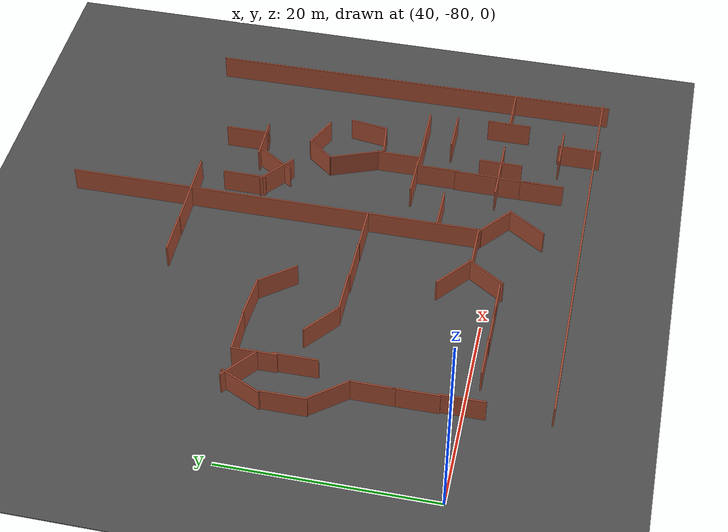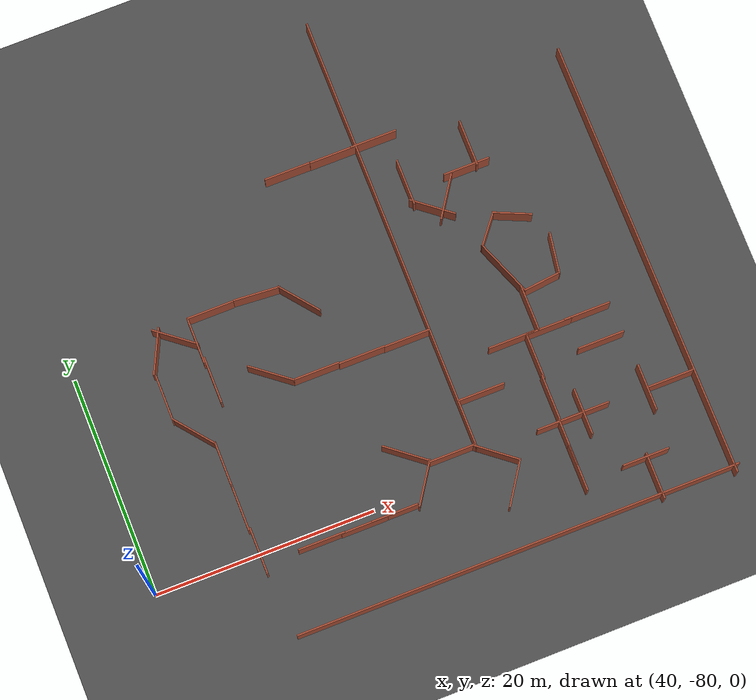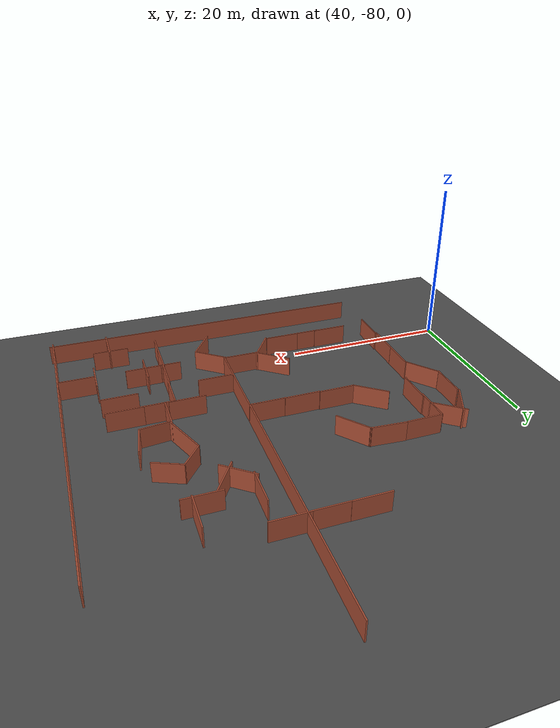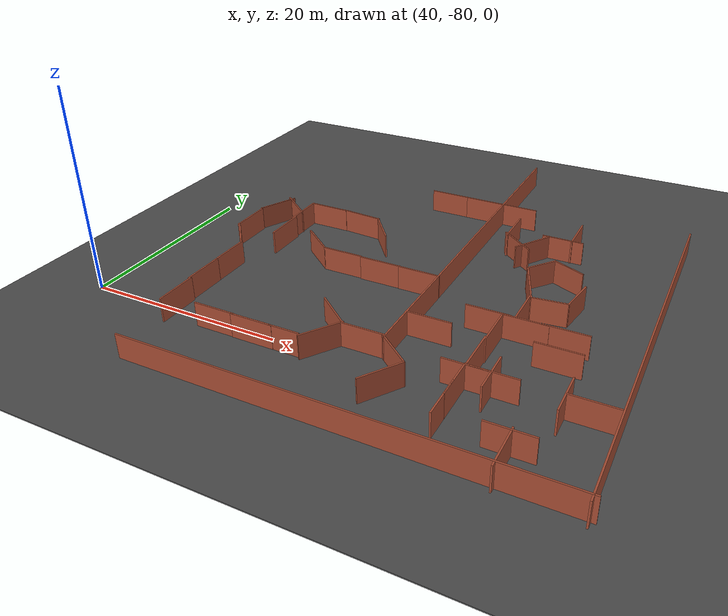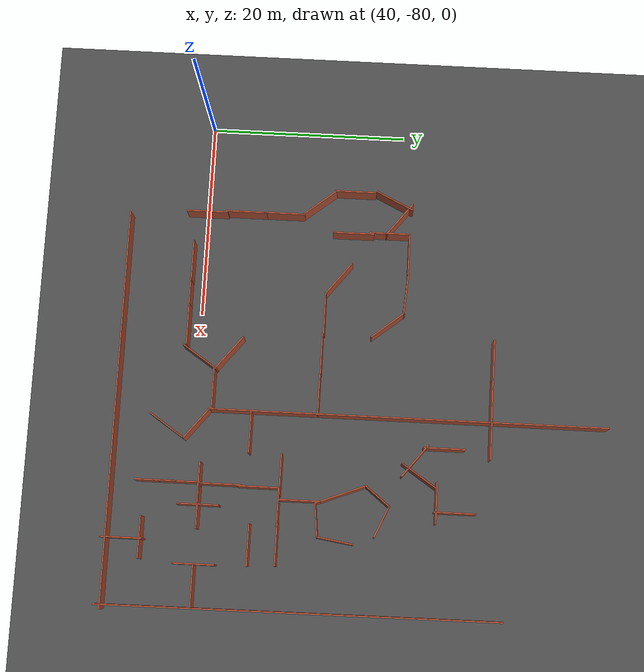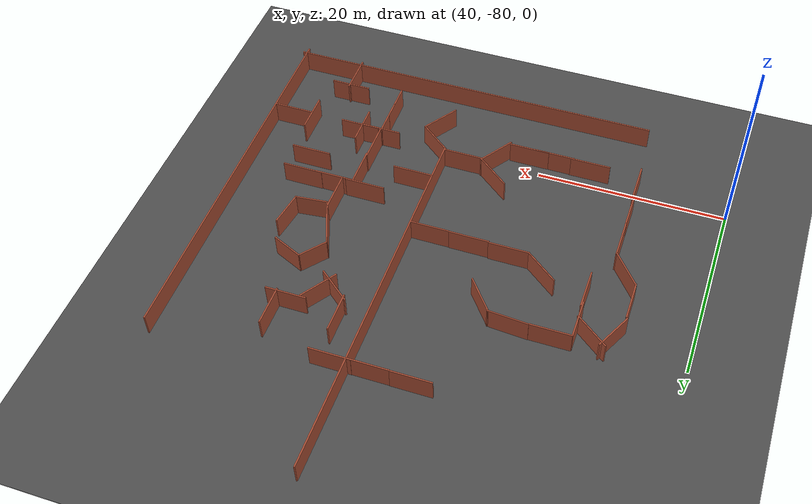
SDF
<sdf version="1.6">
 <world name="default">
  <model name="ground_plane">
   <static>1</static>
   <link name="link">
    <collision name="collision">
     <geometry><plane><normal>0 0 1</normal><size>200 200</size></plane></geometry>
     <surface><friction><ode><mu>100</mu><mu2>50</mu2></ode></friction></surface>
    </collision>
    <visual name="visual">
     <cast_shadows>0</cast_shadows>
     <geometry><plane><normal>0 0 1</normal><size>200 200</size></plane></geometry>
     <material>
      <script><uri>file://media/materials/scripts/gazebo.material</uri><name>Gazebo/Grey</name></script>
     </material>
    </visual>
   </link>
  </model>
  <model name="asphalt_plane">
   <static>1</static>
   <link name="link">
    <collision name="collision"><geometry><box><size>200 200 0.1</size></box></geometry></collision>
    <visual name="visual">
     <cast_shadows>0</cast_shadows>
     <geometry><box><size>200 200 0.1</size></box></geometry>
     <material>
      <script>
       <uri>model://asphalt_plane/materials/scripts</uri>
       <uri>model://asphalt_plane/materials/textures</uri>
       <name>vrc/asphalt</name>
      </script>
     </material>
    </visual>
   </link>
  </model>
  <model name="longwall_0_clone">
   <pose>70.0948 -58.1794 0 0 0 -1.57092</pose>
   <link name="Wall_0">
    <collision name="Wall_0_Collision">
     <geometry><box><size>40.5 0.15 2.5</size></box></geometry>
     <pose>0 0 1.25 0 -0 0</pose>
    </collision>
    <visual name="Wall_0_Visual">
     <pose>0 0 1.25 0 -0 0</pose>
     <geometry><box><size>40.5 0.15 2.5</size></box></geometry>
     <material>
      <script><uri>file://media/materials/scripts/gazebo.material</uri><name>Gazebo/Bricks</name></script>
      <ambient>1 1 1 1</ambient>
     </material>
    </visual>
    <pose>1e-06 0 0 0 -0 0</pose>
   </link>
   <static>1</static>
  </model>
  <model name="worlds_0_clone">
   <pose>57.3372 -59.0075 0 0 -0 1.49697</pose>
   <link name="Wall_0">
    <collision name="Wall_0_Collision">
     <geometry><box><size>4.25 0.15 2.5</size></box></geometry>
     <pose>0 0 1.25 0 -0 0</pose>
    </collision>
    <visual name="Wall_0_Visual">
     <pose>0 0 1.25 0 -0 0</pose>
     <geometry><box><size>4.25 0.15 2.5</size></box></geometry>
     <material>
      <script><uri>file://media/materials/scripts/gazebo.material</uri><name>Gazebo/Bricks</name></script>
      <ambient>1 1 1 1</ambient>
     </material>
    </visual>
    <pose>0 -0 0 0 -0 1.5708</pose>
   </link>
   <static>1</static>
  </model>
  <model name="worlds_2_clone">
   <pose>60.6055 -60.7291 0 0 -0 0.67691</pose>
   <link name="Wall_0">
    <collision name="Wall_0_Collision">
     <geometry><box><size>4.25 0.15 2.5</size></box></geometry>
     <pose>0 0 1.25 0 -0 0</pose>
    </collision>
    <visual name="Wall_0_Visual">
     <pose>0 0 1.25 0 -0 0</pose>
     <geometry><box><size>4.25 0.15 2.5</size></box></geometry>
     <material>
      <script><uri>file://media/materials/scripts/gazebo.material</uri><name>Gazebo/Bricks</name></script>
      <ambient>1 1 1 1</ambient>
     </material>
    </visual>
    <pose>0 -0 0 0 -0 1.5708</pose>
   </link>
   <static>1</static>
  </model>
  <model name="worlds_1_clone_0_clone">
   <pose>63.736 -49.7946 0 0 0 -1.57092</pose>
   <link name="Wall_0">
    <collision name="Wall_0_Collision">
     <geometry><box><size>4.25 0.15 2.5</size></box></geometry>
     <pose>0 0 1.25 0 -0 0</pose>
    </collision>
    <visual name="Wall_0_Visual">
     <pose>0 0 1.25 0 -0 0</pose>
     <geometry><box><size>4.25 0.15 2.5</size></box></geometry>
     <material>
      <script><uri>file://media/materials/scripts/gazebo.material</uri><name>Gazebo/Bricks</name></script>
      <ambient>1 1 1 1</ambient>
     </material>
    </visual>
    <pose>0 -0 0 0 -0 1.5708</pose>
   </link>
   <static>1</static>
  </model>
  <model name="worlds_1_clone_0_clone_clone">
   <pose>67.9203 -49.8236 0 0 0 -1.57092</pose>
   <link name="Wall_0">
    <collision name="Wall_0_Collision">
     <geometry><box><size>4.25 0.15 2.5</size></box></geometry>
     <pose>0 0 1.25 0 -0 0</pose>
    </collision>
    <visual name="Wall_0_Visual">
     <pose>0 0 1.25 0 -0 0</pose>
     <geometry><box><size>4.25 0.15 2.5</size></box></geometry>
     <material>
      <script><uri>file://media/materials/scripts/gazebo.material</uri><name>Gazebo/Bricks</name></script>
      <ambient>1 1 1 1</ambient>
     </material>
    </visual>
    <pose>0 -0 0 0 -0 1.5708</pose>
   </link>
   <static>1</static>
  </model>
  <model name="worlds_1_clone_1_clone">
   <pose>51.1412 -64.7 0 0 -0 0</pose>
   <link name="Wall_0">
    <collision name="Wall_0_Collision">
     <geometry><box><size>4.25 0.15 2.5</size></box></geometry>
     <pose>0 0 1.25 0 -0 0</pose>
    </collision>
    <visual name="Wall_0_Visual">
     <pose>0 0 1.25 0 -0 0</pose>
     <geometry><box><size>4.25 0.15 2.5</size></box></geometry>
     <material>
      <script><uri>file://media/materials/scripts/gazebo.material</uri><name>Gazebo/Bricks</name></script>
      <ambient>1 1 1 1</ambient>
     </material>
    </visual>
    <pose>0 -0 0 0 -0 1.5708</pose>
   </link>
   <static>1</static>
  </model>
  <model name="worlds_1_clone_0_clone_clone_0_clone_clone_0">
   <pose>53.1055 -58.8873 0 0 0 -1.57092</pose>
   <link name="Wall_0">
    <collision name="Wall_0_Collision">
     <geometry><box><size>4.25 0.15 2.5</size></box></geometry>
     <pose>0 0 1.25 0 -0 0</pose>
    </collision>
    <visual name="Wall_0_Visual">
     <pose>0 0 1.25 0 -0 0</pose>
     <geometry><box><size>4.25 0.15 2.5</size></box></geometry>
     <material>
      <script><uri>file://media/materials/scripts/gazebo.material</uri><name>Gazebo/Bricks</name></script>
      <ambient>1 1 1 1</ambient>
     </material>
    </visual>
    <pose>0 -0 0 0 -0 1.5708</pose>
   </link>
   <static>1</static>
  </model>
  <model name="longwall_clone_clone_3_clone_0">
   <pose>89.9316 -68.2995 0 0 0 -1.56602</pose>
   <link name="Wall_0">
    <collision name="Wall_0_Collision">
     <geometry><box><size>40.5 0.15 2.5</size></box></geometry>
     <pose>0 0 1.25 0 -0 0</pose>
    </collision>
    <visual name="Wall_0_Visual">
     <pose>0 0 1.25 0 -0 0</pose>
     <geometry><box><size>40.5 0.15 2.5</size></box></geometry>
     <material>
      <script><uri>file://media/materials/scripts/gazebo.material</uri><name>Gazebo/Bricks</name></script>
      <ambient>1 1 1 1</ambient>
     </material>
    </visual>
    <pose>1e-06 0 0 0 -0 0</pose>
   </link>
   <static>1</static>
  </model>
  <model name="worlds_1_clone_0_clone_clone_0_clone_clone_clone">
   <pose>71.7506 -49.7978 0 0 0 -1.57092</pose>
   <link name="Wall_0">
    <collision name="Wall_0_Collision">
     <geometry><box><size>4.25 0.15 2.5</size></box></geometry>
     <pose>0 0 1.25 0 -0 0</pose>
    </collision>
    <visual name="Wall_0_Visual">
     <pose>0 0 1.25 0 -0 0</pose>
     <geometry><box><size>4.25 0.15 2.5</size></box></geometry>
     <material>
      <script><uri>file://media/materials/scripts/gazebo.material</uri><name>Gazebo/Bricks</name></script>
      <ambient>1 1 1 1</ambient>
     </material>
    </visual>
    <pose>0 -0 0 0 -0 1.5708</pose>
   </link>
   <static>1</static>
  </model>
  <model name="worlds_1_clone_0_clone_clone_0_clone_clone_clone_0">
   <pose>67.9553 -78.1375 0 0 0 -1.57092</pose>
   <link name="Wall_0">
    <collision name="Wall_0_Collision">
     <geometry><box><size>4.25 0.15 2.5</size></box></geometry>
     <pose>0 0 1.25 0 -0 0</pose>
    </collision>
    <visual name="Wall_0_Visual">
     <pose>0 0 1.25 0 -0 0</pose>
     <geometry><box><size>4.25 0.15 2.5</size></box></geometry>
     <material>
      <script><uri>file://media/materials/scripts/gazebo.material</uri><name>Gazebo/Bricks</name></script>
      <ambient>1 1 1 1</ambient>
     </material>
    </visual>
    <pose>0 -0 0 0 -0 1.5708</pose>
   </link>
   <static>1</static>
  </model>
  <model name="worlds_1_clone_1_clone_clone_0_clone">
   <pose>49.3914 -71.9286 0 0 -0 0</pose>
   <link name="Wall_0">
    <collision name="Wall_0_Collision">
     <geometry><box><size>4.25 0.15 2.5</size></box></geometry>
     <pose>0 0 1.25 0 -0 0</pose>
    </collision>
    <visual name="Wall_0_Visual">
     <pose>0 0 1.25 0 -0 0</pose>
     <geometry><box><size>4.25 0.15 2.5</size></box></geometry>
     <material>
      <script><uri>file://media/materials/scripts/gazebo.material</uri><name>Gazebo/Bricks</name></script>
      <ambient>1 1 1 1</ambient>
     </material>
    </visual>
    <pose>0 -0 0 0 -0 1.5708</pose>
   </link>
   <static>1</static>
  </model>
  <model name="worlds_1_clone_1_clone_clone_0_clone_0">
   <pose>49.402 -75.9018 0 0 -0 0</pose>
   <link name="Wall_0">
    <collision name="Wall_0_Collision">
     <geometry><box><size>4.25 0.15 2.5</size></box></geometry>
     <pose>0 0 1.25 0 -0 0</pose>
    </collision>
    <visual name="Wall_0_Visual">
     <pose>0 0 1.25 0 -0 0</pose>
     <geometry><box><size>4.25 0.15 2.5</size></box></geometry>
     <material>
      <script><uri>file://media/materials/scripts/gazebo.material</uri><name>Gazebo/Bricks</name></script>
      <ambient>1 1 1 1</ambient>
     </material>
    </visual>
    <pose>0 -0 0 0 -0 1.5708</pose>
   </link>
   <static>1</static>
  </model>
  <model name="worlds_1_clone_1_clone_clone_0_clone_1">
   <pose>49.5458 -79.924 0 0 -0 0</pose>
   <link name="Wall_0">
    <collision name="Wall_0_Collision">
     <geometry><box><size>4.25 0.15 2.5</size></box></geometry>
     <pose>0 0 1.25 0 -0 0</pose>
    </collision>
    <visual name="Wall_0_Visual">
     <pose>0 0 1.25 0 -0 0</pose>
     <geometry><box><size>4.25 0.15 2.5</size></box></geometry>
     <material>
      <script><uri>file://media/materials/scripts/gazebo.material</uri><name>Gazebo/Bricks</name></script>
      <ambient>1 1 1 1</ambient>
     </material>
    </visual>
    <pose>0 -0 0 0 -0 1.5708</pose>
   </link>
   <static>1</static>
  </model>
  <model name="room1_clone_1">
   <pose>80.2942 -63.443 0 0 -0 1.93941</pose>
   <link name="Wall_11">
    <collision name="Wall_11_Collision">
     <geometry><box><size>3.25 0.15 2.5</size></box></geometry>
     <pose>0 0 1.25 0 -0 0</pose>
    </collision>
    <visual name="Wall_11_Visual">
     <pose>0 0 1.25 0 -0 0</pose>
     <geometry><box><size>3.25 0.15 2.5</size></box></geometry>
     <material>
      <script><uri>file://media/materials/scripts/gazebo.material</uri><name>Gazebo/Bricks</name></script>
      <ambient>1 1 1 1</ambient>
     </material>
    </visual>
    <pose>3.12132 1.19483 0 0 0 -1.0472</pose>
   </link>
   <link name="Wall_12">
    <collision name="Wall_12_Collision">
     <geometry><box><size>3.5 0.15 2.5</size></box></geometry>
     <pose>0 0 1.25 0 -0 0</pose>
    </collision>
    <visual name="Wall_12_Visual">
     <pose>0 0 1.25 0 -0 0</pose>
     <geometry><box><size>3.5 0.15 2.5</size></box></geometry>
     <material>
      <script><uri>file://media/materials/scripts/gazebo.material</uri><name>Gazebo/Bricks</name></script>
      <ambient>1 1 1 1</ambient>
     </material>
    </visual>
    <pose>2.71192 -1.33192 0 0 0 -2.35619</pose>
   </link>
   <link name="Wall_7">
    <collision name="Wall_7_Collision">
     <geometry><box><size>5.52935 0.15 2.5</size></box></geometry>
     <pose>0 0 1.25 0 -0 0</pose>
    </collision>
    <visual name="Wall_7_Visual">
     <pose>0 0 1.25 0 -0 0</pose>
     <geometry><box><size>5.52935 0.15 2.5</size></box></geometry>
     <material>
      <script><uri>file://media/materials/scripts/gazebo.material</uri><name>Gazebo/Bricks</name></script>
      <ambient>1 1 1 1</ambient>
     </material>
    </visual>
    <pose>-0.343285 2.51793 0 0 0 -3.13444</pose>
   </link>
   <link name="Wall_8">
    <collision name="Wall_8_Collision">
     <geometry><box><size>3.5 0.15 2.5</size></box></geometry>
     <pose>0 0 1.25 0 -0 0</pose>
    </collision>
    <visual name="Wall_8_Visual">
     <pose>0 0 1.25 0 -0 0</pose>
     <geometry><box><size>3.5 0.15 2.5</size></box></geometry>
     <material>
      <script><uri>file://media/materials/scripts/gazebo.material</uri><name>Gazebo/Bricks</name></script>
      <ambient>1 1 1 1</ambient>
     </material>
    </visual>
    <pose>-3.46641 0.880761 0 0 0 -1.8326</pose>
   </link>
   <link name="Wall_9">
    <collision name="Wall_9_Collision">
     <geometry><box><size>3.75 0.15 2.5</size></box></geometry>
     <pose>0 0 1.25 0 -0 0</pose>
    </collision>
    <visual name="Wall_9_Visual">
     <pose>0 0 1.25 0 -0 0</pose>
     <geometry><box><size>3.75 0.15 2.5</size></box></geometry>
     <material>
      <script><uri>file://media/materials/scripts/gazebo.material</uri><name>Gazebo/Bricks</name></script>
      <ambient>1 1 1 1</ambient>
     </material>
    </visual>
    <pose>-2.34109 -1.63716 0 0 0 -0.523599</pose>
   </link>
   <static>1</static>
  </model>
  <model name="worlds_1_clone_1_clone_8_clone">
   <pose>50.9946 -60.9535 0 0 -0 0</pose>
   <link name="Wall_0">
    <collision name="Wall_0_Collision">
     <geometry><box><size>4.25 0.15 2.5</size></box></geometry>
     <pose>0 0 1.25 0 -0 0</pose>
    </collision>
    <visual name="Wall_0_Visual">
     <pose>0 0 1.25 0 -0 0</pose>
     <geometry><box><size>4.25 0.15 2.5</size></box></geometry>
     <material>
      <script><uri>file://media/materials/scripts/gazebo.material</uri><name>Gazebo/Bricks</name></script>
      <ambient>1 1 1 1</ambient>
     </material>
    </visual>
    <pose>0 -0 0 0 -0 1.5708</pose>
   </link>
   <static>1</static>
  </model>
  <model name="worlds_1_clone_0_clone_clone_0_clone_2_clone_0_clone_clone_0">
   <pose>68.044 -67.3876 0 0 0 -1.57092</pose>
   <link name="Wall_0">
    <collision name="Wall_0_Collision">
     <geometry><box><size>4.25 0.15 2.5</size></box></geometry>
     <pose>0 0 1.25 0 -0 0</pose>
    </collision>
    <visual name="Wall_0_Visual">
     <pose>0 0 1.25 0 -0 0</pose>
     <geometry><box><size>4.25 0.15 2.5</size></box></geometry>
     <material>
      <script><uri>file://media/materials/scripts/gazebo.material</uri><name>Gazebo/Bricks</name></script>
      <ambient>1 1 1 1</ambient>
     </material>
    </visual>
    <pose>0 -0 0 0 -0 1.5708</pose>
   </link>
   <static>1</static>
  </model>
  <model name="worlds_1_clone_0_clone_clone_0_clone_2_clone_0_clone_clone_1">
   <pose>63.8743 -67.3475 0 0 0 -1.57092</pose>
   <link name="Wall_0">
    <collision name="Wall_0_Collision">
     <geometry><box><size>4.25 0.15 2.5</size></box></geometry>
     <pose>0 0 1.25 0 -0 0</pose>
    </collision>
    <visual name="Wall_0_Visual">
     <pose>0 0 1.25 0 -0 0</pose>
     <geometry><box><size>4.25 0.15 2.5</size></box></geometry>
     <material>
      <script><uri>file://media/materials/scripts/gazebo.material</uri><name>Gazebo/Bricks</name></script>
      <ambient>1 1 1 1</ambient>
     </material>
    </visual>
    <pose>0 -0 0 0 -0 1.5708</pose>
   </link>
   <static>1</static>
  </model>
  <model name="worlds_1_clone_0_clone_clone_0_clone_2_clone_0_clone_clone_2">
   <pose>59.7006 -67.2411 0 0 0 -1.57092</pose>
   <link name="Wall_0">
    <collision name="Wall_0_Collision">
     <geometry><box><size>4.25 0.15 2.5</size></box></geometry>
     <pose>0 0 1.25 0 -0 0</pose>
    </collision>
    <visual name="Wall_0_Visual">
     <pose>0 0 1.25 0 -0 0</pose>
     <geometry><box><size>4.25 0.15 2.5</size></box></geometry>
     <material>
      <script><uri>file://media/materials/scripts/gazebo.material</uri><name>Gazebo/Bricks</name></script>
      <ambient>1 1 1 1</ambient>
     </material>
    </visual>
    <pose>0 -0 0 0 -0 1.5708</pose>
   </link>
   <static>1</static>
  </model>
  <model name="worlds_0_clone_clone_clone">
   <pose>55.9904 -65.9681 0 0 -0 0.905658</pose>
   <link name="Wall_0">
    <collision name="Wall_0_Collision">
     <geometry><box><size>4.25 0.15 2.5</size></box></geometry>
     <pose>0 0 1.25 0 -0 0</pose>
    </collision>
    <visual name="Wall_0_Visual">
     <pose>0 0 1.25 0 -0 0</pose>
     <geometry><box><size>4.25 0.15 2.5</size></box></geometry>
     <material>
      <script><uri>file://media/materials/scripts/gazebo.material</uri><name>Gazebo/Bricks</name></script>
      <ambient>1 1 1 1</ambient>
     </material>
    </visual>
    <pose>0 -0 0 0 -0 1.5708</pose>
   </link>
   <static>1</static>
  </model>
  <model name="worlds_1_clone_0_clone_clone_0_clone_clone_0_clone_clone_clone_clone">
   <pose>54.8178 -81.1067 0 0 0 -1.57092</pose>
   <link name="Wall_0">
    <collision name="Wall_0_Collision">
     <geometry><box><size>4.25 0.15 2.5</size></box></geometry>
     <pose>0 0 1.25 0 -0 0</pose>
    </collision>
    <visual name="Wall_0_Visual">
     <pose>0 0 1.25 0 -0 0</pose>
     <geometry><box><size>4.25 0.15 2.5</size></box></geometry>
     <material>
      <script><uri>file://media/materials/scripts/gazebo.material</uri><name>Gazebo/Bricks</name></script>
      <ambient>1 1 1 1</ambient>
     </material>
    </visual>
    <pose>0 -0 0 0 -0 1.5708</pose>
   </link>
   <static>1</static>
  </model>
  <model name="worlds_1_clone_0_clone_clone_0_clone_clone_0_clone_clone_clone_clone_0">
   <pose>58.7296 -81.1514 0 0 0 -1.57092</pose>
   <link name="Wall_0">
    <collision name="Wall_0_Collision">
     <geometry><box><size>4.25 0.15 2.5</size></box></geometry>
     <pose>0 0 1.25 0 -0 0</pose>
    </collision>
    <visual name="Wall_0_Visual">
     <pose>0 0 1.25 0 -0 0</pose>
     <geometry><box><size>4.25 0.15 2.5</size></box></geometry>
     <material>
      <script><uri>file://media/materials/scripts/gazebo.material</uri><name>Gazebo/Bricks</name></script>
      <ambient>1 1 1 1</ambient>
     </material>
    </visual>
    <pose>0 -0 0 0 -0 1.5708</pose>
   </link>
   <static>1</static>
  </model>
  <model name="worlds_1_clone_0_clone_clone_0_clone_clone_0_clone_clone_clone_clone_1">
   <pose>61.493 -81.135 0 0 0 -1.57092</pose>
   <link name="Wall_0">
    <collision name="Wall_0_Collision">
     <geometry><box><size>4.25 0.15 2.5</size></box></geometry>
     <pose>0 0 1.25 0 -0 0</pose>
    </collision>
    <visual name="Wall_0_Visual">
     <pose>0 0 1.25 0 -0 0</pose>
     <geometry><box><size>4.25 0.15 2.5</size></box></geometry>
     <material>
      <script><uri>file://media/materials/scripts/gazebo.material</uri><name>Gazebo/Bricks</name></script>
      <ambient>1 1 1 1</ambient>
     </material>
    </visual>
    <pose>0 -0 0 0 -0 1.5708</pose>
   </link>
   <static>1</static>
  </model>
  <model name="worlds_1_clone_1_clone_7_clone_clone_clone_clone_0">
   <pose>64.8036 -79.6697 0 0 0 -0.589382</pose>
   <link name="Wall_0">
    <collision name="Wall_0_Collision">
     <geometry><box><size>4.25 0.15 2.5</size></box></geometry>
     <pose>0 0 1.25 0 -0 0</pose>
    </collision>
    <visual name="Wall_0_Visual">
     <pose>0 0 1.25 0 -0 0</pose>
     <geometry><box><size>4.25 0.15 2.5</size></box></geometry>
     <material>
      <script><uri>file://media/materials/scripts/gazebo.material</uri><name>Gazebo/Bricks</name></script>
      <ambient>1 1 1 1</ambient>
     </material>
    </visual>
    <pose>0 -0 0 0 -0 1.5708</pose>
   </link>
   <static>1</static>
  </model>
  <model name="worlds_1_clone_1_clone_7_clone_clone_0_clone_0_clone">
   <pose>64.2131 -76.6769 0 0 -0 0.90029</pose>
   <link name="Wall_0">
    <collision name="Wall_0_Collision">
     <geometry><box><size>4.25 0.15 2.5</size></box></geometry>
     <pose>0 0 1.25 0 -0 0</pose>
    </collision>
    <visual name="Wall_0_Visual">
     <pose>0 0 1.25 0 -0 0</pose>
     <geometry><box><size>4.25 0.15 2.5</size></box></geometry>
     <material>
      <script><uri>file://media/materials/scripts/gazebo.material</uri><name>Gazebo/Bricks</name></script>
      <ambient>1 1 1 1</ambient>
     </material>
    </visual>
    <pose>0 -0 0 0 -0 1.5708</pose>
   </link>
   <static>1</static>
  </model>
  <model name="worlds_1_clone_0_clone_clone_clone">
   <pose>83.5149 -73.633 0 0 0 -1.57092</pose>
   <link name="Wall_0">
    <collision name="Wall_0_Collision">
     <geometry><box><size>4.25 0.15 2.5</size></box></geometry>
     <pose>0 0 1.25 0 -0 0</pose>
    </collision>
    <visual name="Wall_0_Visual">
     <pose>0 0 1.25 0 -0 0</pose>
     <geometry><box><size>4.25 0.15 2.5</size></box></geometry>
     <material>
      <script><uri>file://media/materials/scripts/gazebo.material</uri><name>Gazebo/Bricks</name></script>
      <ambient>1 1 1 1</ambient>
     </material>
    </visual>
    <pose>0 -0 0 0 -0 1.5708</pose>
   </link>
   <static>1</static>
  </model>
  <model name="worlds_1_clone_0_clone_clone_clone_0">
   <pose>83.2444 -84.4697 0 0 0 -1.57092</pose>
   <link name="Wall_0">
    <collision name="Wall_0_Collision">
     <geometry><box><size>4.25 0.15 2.5</size></box></geometry>
     <pose>0 0 1.25 0 -0 0</pose>
    </collision>
    <visual name="Wall_0_Visual">
     <pose>0 0 1.25 0 -0 0</pose>
     <geometry><box><size>4.25 0.15 2.5</size></box></geometry>
     <material>
      <script><uri>file://media/materials/scripts/gazebo.material</uri><name>Gazebo/Bricks</name></script>
      <ambient>1 1 1 1</ambient>
     </material>
    </visual>
    <pose>0 -0 0 0 -0 1.5708</pose>
   </link>
   <static>1</static>
  </model>
  <model name="worlds_1_clone_0_clone_clone_clone_1">
   <pose>77.5975 -78.9334 0 0 0 -1.57092</pose>
   <link name="Wall_0">
    <collision name="Wall_0_Collision">
     <geometry><box><size>4.25 0.15 2.5</size></box></geometry>
     <pose>0 0 1.25 0 -0 0</pose>
    </collision>
    <visual name="Wall_0_Visual">
     <pose>0 0 1.25 0 -0 0</pose>
     <geometry><box><size>4.25 0.15 2.5</size></box></geometry>
     <material>
      <script><uri>file://media/materials/scripts/gazebo.material</uri><name>Gazebo/Bricks</name></script>
      <ambient>1 1 1 1</ambient>
     </material>
    </visual>
    <pose>0 -0 0 0 -0 1.5708</pose>
   </link>
   <static>1</static>
  </model>
  <model name="worlds_1_clone_0_clone_clone_clone_2">
   <pose>87.7856 -78.9348 0 0 0 -1.57092</pose>
   <link name="Wall_0">
    <collision name="Wall_0_Collision">
     <geometry><box><size>4.25 0.15 2.5</size></box></geometry>
     <pose>0 0 1.25 0 -0 0</pose>
    </collision>
    <visual name="Wall_0_Visual">
     <pose>0 0 1.25 0 -0 0</pose>
     <geometry><box><size>4.25 0.15 2.5</size></box></geometry>
     <material>
      <script><uri>file://media/materials/scripts/gazebo.material</uri><name>Gazebo/Bricks</name></script>
      <ambient>1 1 1 1</ambient>
     </material>
    </visual>
    <pose>0 -0 0 0 -0 1.5708</pose>
   </link>
   <static>1</static>
  </model>
  <model name="worlds_1_clone_clone_clone_clone">
   <pose>85.6489 -78.894 0 0 -0 0</pose>
   <link name="Wall_0">
    <collision name="Wall_0_Collision">
     <geometry><box><size>4.25 0.15 2.5</size></box></geometry>
     <pose>0 0 1.25 0 -0 0</pose>
    </collision>
    <visual name="Wall_0_Visual">
     <pose>0 0 1.25 0 -0 0</pose>
     <geometry><box><size>4.25 0.15 2.5</size></box></geometry>
     <material>
      <script><uri>file://media/materials/scripts/gazebo.material</uri><name>Gazebo/Bricks</name></script>
      <ambient>1 1 1 1</ambient>
     </material>
    </visual>
    <pose>0 -0 0 0 -0 1.5708</pose>
   </link>
   <static>1</static>
  </model>
  <model name="worlds_1_clone_clone_clone_clone_0">
   <pose>79.734 -78.8659 0 0 -0 0</pose>
   <link name="Wall_0">
    <collision name="Wall_0_Collision">
     <geometry><box><size>4.25 0.15 2.5</size></box></geometry>
     <pose>0 0 1.25 0 -0 0</pose>
    </collision>
    <visual name="Wall_0_Visual">
     <pose>0 0 1.25 0 -0 0</pose>
     <geometry><box><size>4.25 0.15 2.5</size></box></geometry>
     <material>
      <script><uri>file://media/materials/scripts/gazebo.material</uri><name>Gazebo/Bricks</name></script>
      <ambient>1 1 1 1</ambient>
     </material>
    </visual>
    <pose>0 -0 0 0 -0 1.5708</pose>
   </link>
   <static>1</static>
  </model>
  <model name="worlds_1_clone_clone_clone_clone_1">
   <pose>83.381 -86.268 0 0 -0 0</pose>
   <link name="Wall_0">
    <collision name="Wall_0_Collision">
     <geometry><box><size>4.25 0.15 2.5</size></box></geometry>
     <pose>0 0 1.25 0 -0 0</pose>
    </collision>
    <visual name="Wall_0_Visual">
     <pose>0 0 1.25 0 -0 0</pose>
     <geometry><box><size>4.25 0.15 2.5</size></box></geometry>
     <material>
      <script><uri>file://media/materials/scripts/gazebo.material</uri><name>Gazebo/Bricks</name></script>
      <ambient>1 1 1 1</ambient>
     </material>
    </visual>
    <pose>0 -0 0 0 -0 1.5708</pose>
   </link>
   <static>1</static>
  </model>
  <model name="worlds_1_clone_clone_clone_clone_2">
   <pose>77.5229 -80.8692 0 0 -0 0</pose>
   <link name="Wall_0">
    <collision name="Wall_0_Collision">
     <geometry><box><size>4.25 0.15 2.5</size></box></geometry>
     <pose>0 0 1.25 0 -0 0</pose>
    </collision>
    <visual name="Wall_0_Visual">
     <pose>0 0 1.25 0 -0 0</pose>
     <geometry><box><size>4.25 0.15 2.5</size></box></geometry>
     <material>
      <script><uri>file://media/materials/scripts/gazebo.material</uri><name>Gazebo/Bricks</name></script>
      <ambient>1 1 1 1</ambient>
     </material>
    </visual>
    <pose>0 -0 0 0 -0 1.5708</pose>
   </link>
   <static>1</static>
  </model>
  <model name="worlds_1_clone_clone_clone_clone_3">
   <pose>77.5192 -83.2309 0 0 -0 0</pose>
   <link name="Wall_0">
    <collision name="Wall_0_Collision">
     <geometry><box><size>4.25 0.15 2.5</size></box></geometry>
     <pose>0 0 1.25 0 -0 0</pose>
    </collision>
    <visual name="Wall_0_Visual">
     <pose>0 0 1.25 0 -0 0</pose>
     <geometry><box><size>4.25 0.15 2.5</size></box></geometry>
     <material>
      <script><uri>file://media/materials/scripts/gazebo.material</uri><name>Gazebo/Bricks</name></script>
      <ambient>1 1 1 1</ambient>
     </material>
    </visual>
    <pose>0 -0 0 0 -0 1.5708</pose>
   </link>
   <static>1</static>
  </model>
  <model name="worlds_1_clone_clone_clone_clone_4">
   <pose>77.6096 -76.7617 0 0 -0 0</pose>
   <link name="Wall_0">
    <collision name="Wall_0_Collision">
     <geometry><box><size>4.25 0.15 2.5</size></box></geometry>
     <pose>0 0 1.25 0 -0 0</pose>
    </collision>
    <visual name="Wall_0_Visual">
     <pose>0 0 1.25 0 -0 0</pose>
     <geometry><box><size>4.25 0.15 2.5</size></box></geometry>
     <material>
      <script><uri>file://media/materials/scripts/gazebo.material</uri><name>Gazebo/Bricks</name></script>
      <ambient>1 1 1 1</ambient>
     </material>
    </visual>
    <pose>0 -0 0 0 -0 1.5708</pose>
   </link>
   <static>1</static>
  </model>
  <model name="worlds_1_clone_clone_clone_clone_5">
   <pose>77.707 -72.8815 0 0 -0 0</pose>
   <link name="Wall_0">
    <collision name="Wall_0_Collision">
     <geometry><box><size>4.25 0.15 2.5</size></box></geometry>
     <pose>0 0 1.25 0 -0 0</pose>
    </collision>
    <visual name="Wall_0_Visual">
     <pose>0 0 1.25 0 -0 0</pose>
     <geometry><box><size>4.25 0.15 2.5</size></box></geometry>
     <material>
      <script><uri>file://media/materials/scripts/gazebo.material</uri><name>Gazebo/Bricks</name></script>
      <ambient>1 1 1 1</ambient>
     </material>
    </visual>
    <pose>0 -0 0 0 -0 1.5708</pose>
   </link>
   <static>1</static>
  </model>
  <model name="worlds_1_clone_0_clone_clone_clone_clone">
   <pose>79.7687 -70.8654 0 0 0 -1.57092</pose>
   <link name="Wall_0">
    <collision name="Wall_0_Collision">
     <geometry><box><size>4.25 0.15 2.5</size></box></geometry>
     <pose>0 0 1.25 0 -0 0</pose>
    </collision>
    <visual name="Wall_0_Visual">
     <pose>0 0 1.25 0 -0 0</pose>
     <geometry><box><size>4.25 0.15 2.5</size></box></geometry>
     <material>
      <script><uri>file://media/materials/scripts/gazebo.material</uri><name>Gazebo/Bricks</name></script>
      <ambient>1 1 1 1</ambient>
     </material>
    </visual>
    <pose>0 -0 0 0 -0 1.5708</pose>
   </link>
   <static>1</static>
  </model>
  <model name="worlds_1_clone_0_clone_clone_clone_clone_0">
   <pose>83.3358 -70.8342 0 0 0 -1.57092</pose>
   <link name="Wall_0">
    <collision name="Wall_0_Collision">
     <geometry><box><size>4.25 0.15 2.5</size></box></geometry>
     <pose>0 0 1.25 0 -0 0</pose>
    </collision>
    <visual name="Wall_0_Visual">
     <pose>0 0 1.25 0 -0 0</pose>
     <geometry><box><size>4.25 0.15 2.5</size></box></geometry>
     <material>
      <script><uri>file://media/materials/scripts/gazebo.material</uri><name>Gazebo/Bricks</name></script>
      <ambient>1 1 1 1</ambient>
     </material>
    </visual>
    <pose>0 -0 0 0 -0 1.5708</pose>
   </link>
   <static>1</static>
  </model>
  <model name="worlds_1_clone_0_clone_clone_clone_clone_1">
   <pose>80.0078 -78.8997 0 0 0 -1.57092</pose>
   <link name="Wall_0">
    <collision name="Wall_0_Collision">
     <geometry><box><size>4.25 0.15 2.5</size></box></geometry>
     <pose>0 0 1.25 0 -0 0</pose>
    </collision>
    <visual name="Wall_0_Visual">
     <pose>0 0 1.25 0 -0 0</pose>
     <geometry><box><size>4.25 0.15 2.5</size></box></geometry>
     <material>
      <script><uri>file://media/materials/scripts/gazebo.material</uri><name>Gazebo/Bricks</name></script>
      <ambient>1 1 1 1</ambient>
     </material>
    </visual>
    <pose>0 -0 0 0 -0 1.5708</pose>
   </link>
   <static>1</static>
  </model>
  <model name="worlds_1_clone_0_clone_clone_clone_clone_2">
   <pose>76.3534 -70.7976 0 0 0 -1.57092</pose>
   <link name="Wall_0">
    <collision name="Wall_0_Collision">
     <geometry><box><size>4.25 0.15 2.5</size></box></geometry>
     <pose>0 0 1.25 0 -0 0</pose>
    </collision>
    <visual name="Wall_0_Visual">
     <pose>0 0 1.25 0 -0 0</pose>
     <geometry><box><size>4.25 0.15 2.5</size></box></geometry>
     <material>
      <script><uri>file://media/materials/scripts/gazebo.material</uri><name>Gazebo/Bricks</name></script>
      <ambient>1 1 1 1</ambient>
     </material>
    </visual>
    <pose>0 -0 0 0 -0 1.5708</pose>
   </link>
   <static>1</static>
  </model>
  <model name="worlds_1_clone_0_clone_clone_clone_clone_3">
   <pose>72.2405 -74.1054 0 0 0 -1.57092</pose>
   <link name="Wall_0">
    <collision name="Wall_0_Collision">
     <geometry><box><size>4.25 0.15 2.5</size></box></geometry>
     <pose>0 0 1.25 0 -0 0</pose>
    </collision>
    <visual name="Wall_0_Visual">
     <pose>0 0 1.25 0 -0 0</pose>
     <geometry><box><size>4.25 0.15 2.5</size></box></geometry>
     <material>
      <script><uri>file://media/materials/scripts/gazebo.material</uri><name>Gazebo/Bricks</name></script>
      <ambient>1 1 1 1</ambient>
     </material>
    </visual>
    <pose>0 -0 0 0 -0 1.5708</pose>
   </link>
   <static>1</static>
  </model>
  <model name="worlds_1_clone_clone_clone_clone_5_clone">
   <pose>78.8638 -68.7584 0 0 -0 0</pose>
   <link name="Wall_0">
    <collision name="Wall_0_Collision">
     <geometry><box><size>4.25 0.15 2.5</size></box></geometry>
     <pose>0 0 1.25 0 -0 0</pose>
    </collision>
    <visual name="Wall_0_Visual">
     <pose>0 0 1.25 0 -0 0</pose>
     <geometry><box><size>4.25 0.15 2.5</size></box></geometry>
     <material>
      <script><uri>file://media/materials/scripts/gazebo.material</uri><name>Gazebo/Bricks</name></script>
      <ambient>1 1 1 1</ambient>
     </material>
    </visual>
    <pose>0 -0 0 0 -0 1.5708</pose>
   </link>
   <static>1</static>
  </model>
  <model name="worlds_1_clone_1_clone_7_clone_clone_0_clone_0_clone_clone">
   <pose>71.537 -79.4816 0 0 -0 0.90029</pose>
   <link name="Wall_0">
    <collision name="Wall_0_Collision">
     <geometry><box><size>4.25 0.15 2.5</size></box></geometry>
     <pose>0 0 1.25 0 -0 0</pose>
    </collision>
    <visual name="Wall_0_Visual">
     <pose>0 0 1.25 0 -0 0</pose>
     <geometry><box><size>4.25 0.15 2.5</size></box></geometry>
     <material>
      <script><uri>file://media/materials/scripts/gazebo.material</uri><name>Gazebo/Bricks</name></script>
      <ambient>1 1 1 1</ambient>
     </material>
    </visual>
    <pose>0 -0 0 0 -0 1.5708</pose>
   </link>
   <static>1</static>
  </model>
  <model name="worlds_1_clone_1_clone_7_clone_clone_clone_clone_0_clone">
   <pose>71.9701 -82.5172 0 0 0 -0.589382</pose>
   <link name="Wall_0">
    <collision name="Wall_0_Collision">
     <geometry><box><size>4.25 0.15 2.5</size></box></geometry>
     <pose>0 0 1.25 0 -0 0</pose>
    </collision>
    <visual name="Wall_0_Visual">
     <pose>0 0 1.25 0 -0 0</pose>
     <geometry><box><size>4.25 0.15 2.5</size></box></geometry>
     <material>
      <script><uri>file://media/materials/scripts/gazebo.material</uri><name>Gazebo/Bricks</name></script>
      <ambient>1 1 1 1</ambient>
     </material>
    </visual>
    <pose>0 -0 0 0 -0 1.5708</pose>
   </link>
   <static>1</static>
  </model>
  <model name="worlds_1_clone_1_clone_7_clone_clone_clone_clone_0_clone_0">
   <pose>75.7817 -56.9213 0 0 0 -0.589382</pose>
   <link name="Wall_0">
    <collision name="Wall_0_Collision">
     <geometry><box><size>4.25 0.15 2.5</size></box></geometry>
     <pose>0 0 1.25 0 -0 0</pose>
    </collision>
    <visual name="Wall_0_Visual">
     <pose>0 0 1.25 0 -0 0</pose>
     <geometry><box><size>4.25 0.15 2.5</size></box></geometry>
     <material>
      <script><uri>file://media/materials/scripts/gazebo.material</uri><name>Gazebo/Bricks</name></script>
      <ambient>1 1 1 1</ambient>
     </material>
    </visual>
    <pose>0 -0 0 0 -0 1.5708</pose>
   </link>
   <static>1</static>
  </model>
  <model name="worlds_1_clone_1_clone_7_clone_clone_0_clone_0_clone_clone_clone">
   <pose>74.3284 -57.3587 0 0 -0 0.90029</pose>
   <link name="Wall_0">
    <collision name="Wall_0_Collision">
     <geometry><box><size>4.25 0.15 2.5</size></box></geometry>
     <pose>0 0 1.25 0 -0 0</pose>
    </collision>
    <visual name="Wall_0_Visual">
     <pose>0 0 1.25 0 -0 0</pose>
     <geometry><box><size>4.25 0.15 2.5</size></box></geometry>
     <material>
      <script><uri>file://media/materials/scripts/gazebo.material</uri><name>Gazebo/Bricks</name></script>
      <ambient>1 1 1 1</ambient>
     </material>
    </visual>
    <pose>0 -0 0 0 -0 1.5708</pose>
   </link>
   <static>1</static>
  </model>
  <model name="worlds_1_clone_0_clone_clone_clone_clone_3_clone">
   <pose>78.4155 -55.0538 0 0 0 -1.57092</pose>
   <link name="Wall_0">
    <collision name="Wall_0_Collision">
     <geometry><box><size>4.25 0.15 2.5</size></box></geometry>
     <pose>0 0 1.25 0 -0 0</pose>
    </collision>
    <visual name="Wall_0_Visual">
     <pose>0 0 1.25 0 -0 0</pose>
     <geometry><box><size>4.25 0.15 2.5</size></box></geometry>
     <material>
      <script><uri>file://media/materials/scripts/gazebo.material</uri><name>Gazebo/Bricks</name></script>
      <ambient>1 1 1 1</ambient>
     </material>
    </visual>
    <pose>0 -0 0 0 -0 1.5708</pose>
   </link>
   <static>1</static>
  </model>
  <model name="worlds_1_clone_clone_clone_clone_5_clone_0">
   <pose>79.3488 -53.1598 0 0 -0 0</pose>
   <link name="Wall_0">
    <collision name="Wall_0_Collision">
     <geometry><box><size>4.25 0.15 2.5</size></box></geometry>
     <pose>0 0 1.25 0 -0 0</pose>
    </collision>
    <visual name="Wall_0_Visual">
     <pose>0 0 1.25 0 -0 0</pose>
     <geometry><box><size>4.25 0.15 2.5</size></box></geometry>
     <material>
      <script><uri>file://media/materials/scripts/gazebo.material</uri><name>Gazebo/Bricks</name></script>
      <ambient>1 1 1 1</ambient>
     </material>
    </visual>
    <pose>0 -0 0 0 -0 1.5708</pose>
   </link>
   <static>1</static>
  </model>
  <model name="worlds_1_clone_clone_clone_clone_5_clone_1">
   <pose>72.9562 -54.4612 0 0 -0 0</pose>
   <link name="Wall_0">
    <collision name="Wall_0_Collision">
     <geometry><box><size>4.25 0.15 2.5</size></box></geometry>
     <pose>0 0 1.25 0 -0 0</pose>
    </collision>
    <visual name="Wall_0_Visual">
     <pose>0 0 1.25 0 -0 0</pose>
     <geometry><box><size>4.25 0.15 2.5</size></box></geometry>
     <material>
      <script><uri>file://media/materials/scripts/gazebo.material</uri><name>Gazebo/Bricks</name></script>
      <ambient>1 1 1 1</ambient>
     </material>
    </visual>
    <pose>0 -0 0 0 -0 1.5708</pose>
   </link>
   <static>1</static>
  </model>
  <model name="longwall_clone_clone_1_clone">
   <pose>70.225 -87.8698 0 0 -0 0</pose>
   <link name="Wall_0">
    <collision name="Wall_0_Collision">
     <geometry><box><size>40.5 0.15 2.5</size></box></geometry>
     <pose>0 0 1.25 0 -0 0</pose>
    </collision>
    <visual name="Wall_0_Visual">
     <pose>0 0 1.25 0 -0 0</pose>
     <geometry><box><size>40.5 0.15 2.5</size></box></geometry>
     <material>
      <script><uri>file://media/materials/scripts/gazebo.material</uri><name>Gazebo/Bricks</name></script>
      <ambient>1 1 1 1</ambient>
     </material>
    </visual>
    <pose>1e-06 0 0 0 -0 0</pose>
   </link>
   <static>1</static>
  </model>
  <model name="worlds_2_clone_clone_0_clone_2_clone_clone">
   <pose>48.0739 -68.339 0 0 -0 0.67691</pose>
   <link name="Wall_0">
    <collision name="Wall_0_Collision">
     <geometry><box><size>4.25 0.15 2.5</size></box></geometry>
     <pose>0 0 1.25 0 -0 0</pose>
    </collision>
    <visual name="Wall_0_Visual">
     <pose>0 0 1.25 0 -0 0</pose>
     <geometry><box><size>4.25 0.15 2.5</size></box></geometry>
     <material>
      <script><uri>file://media/materials/scripts/gazebo.material</uri><name>Gazebo/Bricks</name></script>
      <ambient>1 1 1 1</ambient>
     </material>
    </visual>
    <pose>0 -0 0 0 -0 1.5708</pose>
   </link>
   <static>1</static>
  </model>
  <model name="worlds_1_clone_1_clone_clone">
   <pose>46.7058 -64.6809 0 0 -0 0</pose>
   <link name="Wall_0">
    <collision name="Wall_0_Collision">
     <geometry><box><size>4.25 0.15 2.5</size></box></geometry>
     <pose>0 0 1.25 0 -0 0</pose>
    </collision>
    <visual name="Wall_0_Visual">
     <pose>0 0 1.25 0 -0 0</pose>
     <geometry><box><size>4.25 0.15 2.5</size></box></geometry>
     <material>
      <script><uri>file://media/materials/scripts/gazebo.material</uri><name>Gazebo/Bricks</name></script>
      <ambient>1 1 1 1</ambient>
     </material>
    </visual>
    <pose>0 -0 0 0 -0 1.5708</pose>
   </link>
   <static>1</static>
  </model>
  <model name="worlds_1_clone_1_clone_clone_0">
   <pose>47.4769 -60.5875 0 0 0 -0.448747</pose>
   <link name="Wall_0">
    <collision name="Wall_0_Collision">
     <geometry><box><size>4.25 0.15 2.5</size></box></geometry>
     <pose>0 0 1.25 0 -0 0</pose>
    </collision>
    <visual name="Wall_0_Visual">
     <pose>0 0 1.25 0 -0 0</pose>
     <geometry><box><size>4.25 0.15 2.5</size></box></geometry>
     <material>
      <script><uri>file://media/materials/scripts/gazebo.material</uri><name>Gazebo/Bricks</name></script>
      <ambient>1 1 1 1</ambient>
     </material>
    </visual>
    <pose>0 -0 0 0 -0 1.5708</pose>
   </link>
   <static>1</static>
  </model>
  <model name="worlds_0_clone_clone_clone_clone">
   <pose>49.4283 -60.0047 0 0 -0 0.905658</pose>
   <link name="Wall_0">
    <collision name="Wall_0_Collision">
     <geometry><box><size>4.25 0.15 2.5</size></box></geometry>
     <pose>0 0 1.25 0 -0 0</pose>
    </collision>
    <visual name="Wall_0_Visual">
     <pose>0 0 1.25 0 -0 0</pose>
     <geometry><box><size>4.25 0.15 2.5</size></box></geometry>
     <material>
      <script><uri>file://media/materials/scripts/gazebo.material</uri><name>Gazebo/Bricks</name></script>
      <ambient>1 1 1 1</ambient>
     </material>
    </visual>
    <pose>0 -0 0 0 -0 1.5708</pose>
   </link>
   <static>1</static>
  </model>
 </world>
</sdf>
